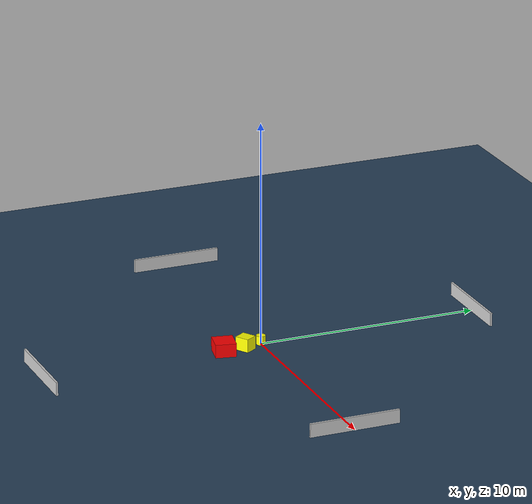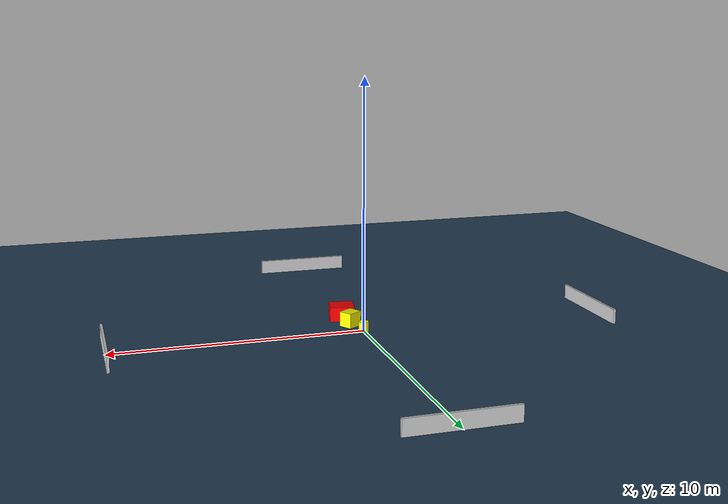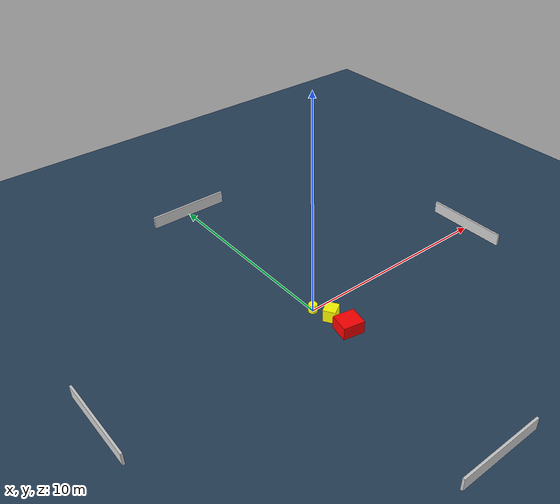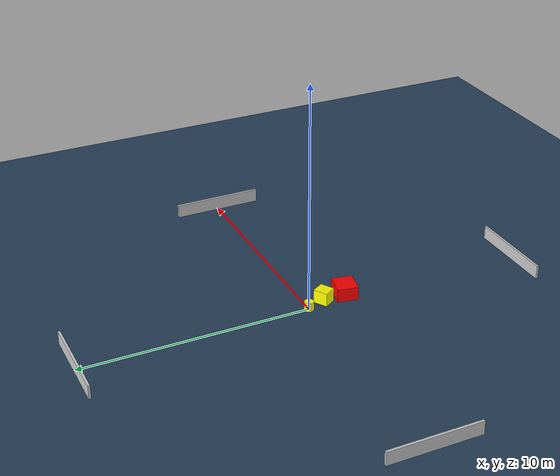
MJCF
<?xml version="1.0" ?>
<mujoco model="generated_environment">
  <option timestep="0.01" integrator="RK4" cone="elliptic"/>
  <default>
    <geom density="1"/>
  </default>
  <asset>
    <texture builtin="gradient" height="3072" name="skybox" rgb1="0.3 0.5 0.7" rgb2="0 0 0" type="skybox" width="512"/>
    <texture builtin="checker" height="300" name="groundplane" rgb1="0.2 0.3 0.4" rgb2="0.1 0.2 0.3" type="2d" width="300"/>
    <material name="groundplane" reflectance="0.2" texrepeat="5 5" texture="groundplane"/>
  </asset>
  <worldbody>
    <light dir="0 0 -1" directional="true" pos="0 0 1.5"/>
    <geom condim="3" friction="0.5 0.005 0.001" material="groundplane" name="floor" pos="0 0 0" size="0 0 0.05" type="plane"/>
    <body name="walls">
      <geom name="wall_1" condim="4" pos="-10.0 0.0 0.3" rgba="0.800000011920929 0.800000011920929 0.800000011920929 1.0" size="0.05 2.0 0.3" type="box"/>
      <geom name="wall_2" condim="4" pos="10.0 0.0 0.3" rgba="0.800000011920929 0.800000011920929 0.800000011920929 1.0" size="0.05 2.0 0.3" type="box"/>
      <geom name="wall_3" condim="4" pos="0.0 -10.0 0.3" rgba="0.800000011920929 0.800000011920929 0.800000011920929 1.0" size="2.0 0.05 0.3" type="box"/>
      <geom name="wall_4" condim="4" pos="0.0 10.0 0.3" rgba="0.800000011920929 0.800000011920929 0.800000011920929 1.0" size="2.0 0.05 0.3" type="box"/>
    </body>
    <body name="robot">
      <joint name="joint_x" type="slide" pos="0 0 0" axis="1 0 0"/>
      <joint name="joint_y" type="slide" pos="0 0 0" axis="0 1 0"/>
      <geom name="robot" type="cylinder" pos="0.0 0.0 0.2" size="0.2 0.2 0.0" mass="5.0" friction="1.0 0.005 0.0001" condim="4" rgba="1.0 1.0 0.0 1.0"/>
    </body>
    <body name="obstacle_1_movable">
      <geom name="obstacle_1_movable" condim="4" pos="0.3048876308952251 -0.835268788466044 0.3" euler="0 0 211.6149963413443" friction="0.0 0.005 0.001" rgba="1.0 1.0 0.0 1.0" size="0.316586339024467 0.2832507822792785 0.3" type="box" mass="0.1"/>
      <joint type="free"/>
    </body>
    <body name="obstacle_2_static">
      <geom name="obstacle_2_static" condim="4" pos="0.376328359100573 -1.8616200121514284 0.3" euler="0 0 78.71276356404411" friction="0.0 0.005 0.001" rgba="1.0 0.0 0.0 1.0" size="0.4562650694587778 0.4961417327579022 0.3" type="box"/>
    </body>
  </worldbody>
  <actuator>
    <motor name="actuator_x" joint="joint_x" gear="1" ctrlrange="-1 1"/>
    <motor name="actuator_y" joint="joint_y" gear="1" ctrlrange="-1 1"/>
  </actuator>
</mujoco>
